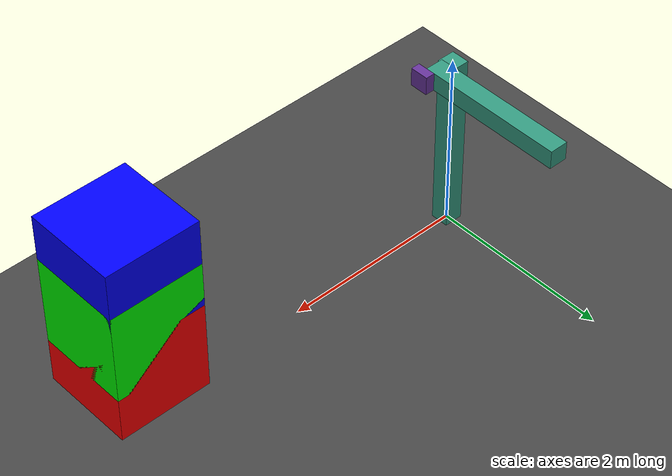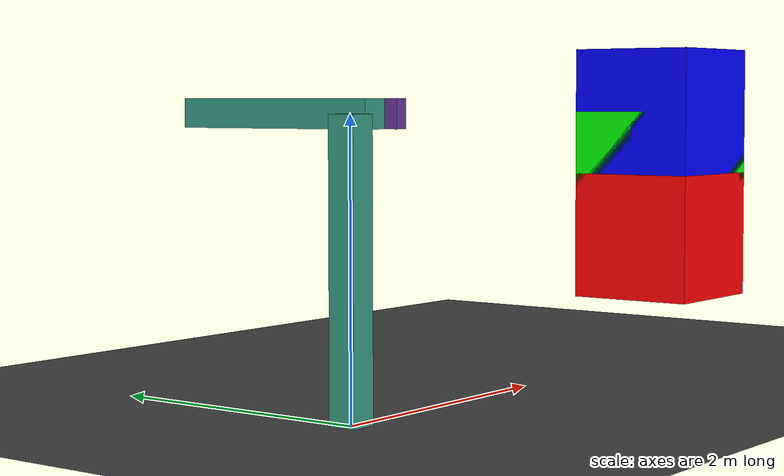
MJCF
<mujoco model="arm_with_cam">
    <option timestep="0.1" iterations="50" solver="Newton" tolerance="1e-10"/>
    <visual>
        <rgba haze=".3 .3 .3 1"/>
        <global offwidth="640" offheight="480" />
    </visual>
    <asset>
        <texture name="texplane" type="2d" builtin="checker" rgb1=".25 .25 .25" rgb2=".3 .3 .3" width="512" height="512" mark="cross" markrgb=".8 .8 .8"/>
        <material name="matplane" reflectance="0.3" texture="texplane" texrepeat="1 1" texuniform="true"/>
    </asset>

    <sensor>
        <framequat name="imu" objtype="body" objname="armBody" />
    </sensor>

    <worldbody>
        <geom name="floor" pos="0 0 0" size="0 0 1" type="plane" material="matplane"/>
        <light directional="true" diffuse=".7 .7 .8" specular=".2 .2 .2" pos="0 0 1" dir="0 0 -1"/>
        <camera name="PerspectiveCamera" mode="fixed" pos="0 0 6" euler="0 -20 90" resolution="640 480"/>

        <body pos="0 0 0">
            <geom name="base1" type="box" size="0.1 0.1 1"  pos="0 0 1" rgba="0.2 0.6 0.5 1"/>

            <body name="armBody" pos="0.25 0 2">
                <geom name="arm" type="box" size="0.1 0.8 0.1" pos="0 0.8 0" rgba="0.2 0.6 0.5 1"/>
                <joint name="joint" type="hinge" pos="0 0 0" axis="1 0 0" frictionloss="0"/>
                <camera name="camera" mode="fixed" pos="0.2 0 0" euler="0 -90 0" resolution="680 480"/>
                <geom name="cameraGeom" type="box" pos="0.15 0 0" size="0.05 0.1 0.1" rgba="0.4 0.2 0.6 1"/>
            </body>
        </body>

        <body pos="0 0 0">
            <geom name="red box" type="box" size="0.5 0.5 0.5"  pos="4 0 1" rgba="1 0 0 1"/>
            <freejoint/>
        </body>

        <body pos="0 0 0">
            <geom name="blue box" type="box" size="0.5 0.5 0.5"  pos="4 0 1.5" rgba="0 1 0 1"/>
            <freejoint/>
        </body>

        <body pos="0 0 0">
            <geom name="green box" type="box" size="0.5 0.5 0.5"  pos="4 0 2" rgba="0 0 1 1"/>
            <freejoint/>
        </body>

    </worldbody>

    <actuator>
        <motor name="armMotor" joint="joint" gear="100" />
    </actuator>

    <!-- Copyright 2022-2023 The MathWorks, Inc. -->
</mujoco>
